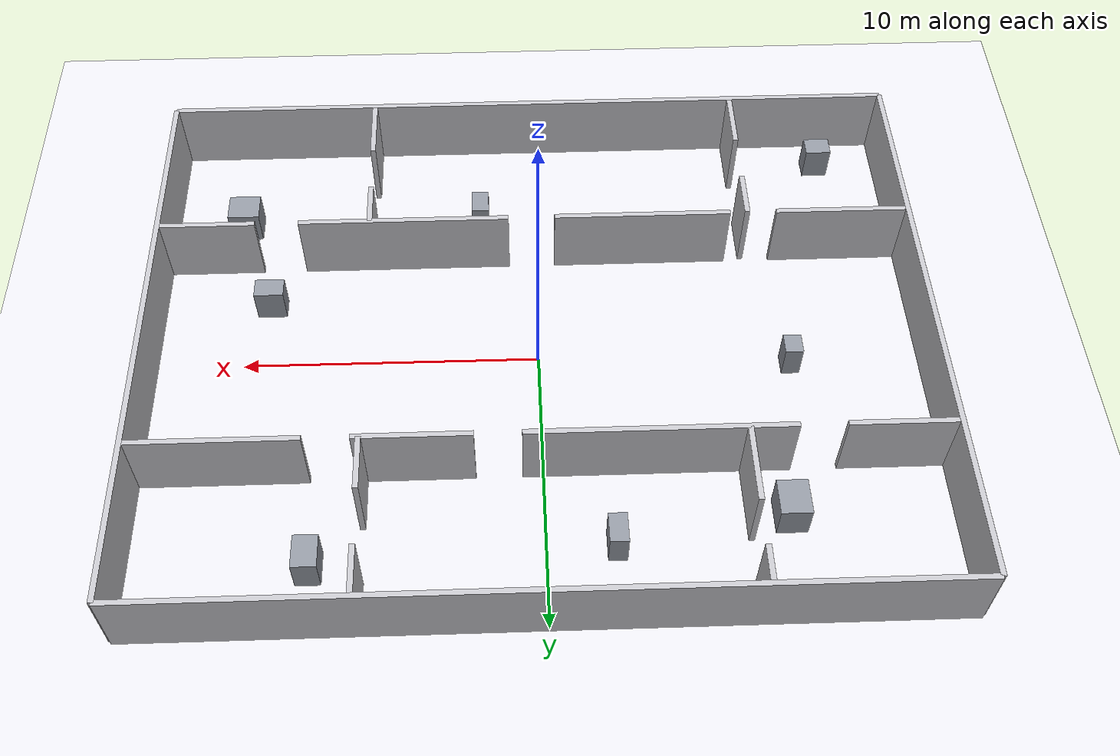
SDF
<?xml version="1.0"?>
<sdf version="1.9"><world name="new_room_world">
<plugin filename="gz-sim-physics-system" name="gz::sim::systems::Physics"/><plugin filename="gz-sim-user-commands-system" name="gz::sim::systems::UserCommands"/><plugin filename="gz-sim-scene-broadcaster-system" name="gz::sim::systems::SceneBroadcaster"/><plugin filename="gz-sim-sensors-system" name="gz::sim::systems::Sensors"><render_engine>ogre2</render_engine></plugin><plugin filename="gz-sim-imu-system" name="gz::sim::systems::Imu"/>
<physics name="new_room_realtime" type="ignored"><max_step_size>0.001</max_step_size><real_time_factor>1</real_time_factor></physics><gravity>0 0 -9.8</gravity><scene><ambient>0.85 0.85 0.87 1</ambient><background>0.68 0.68 0.71 1</background><shadows>false</shadows></scene><light name="sun" type="directional"><cast_shadows>false</cast_shadows><pose>0 0 10 0 0 0</pose><diffuse>0.95 0.95 0.95 1</diffuse><direction>-0.3 0.2 -1</direction></light>
<model name="new_room_ground"><static>true</static><link name="ground_link"><collision name="ground_collision"><geometry><plane><normal>0 0 1</normal><size>40 32</size></plane></geometry></collision><visual name="ground_visual"><geometry><plane><normal>0 0 1</normal><size>40 32</size></plane></geometry><material><ambient>0.92 0.92 0.94 1</ambient><diffuse>0.92 0.92 0.94 1</diffuse></material></visual></link></model>
<model name="mini_hospital_structure"><static>true</static><link name="structure">
<collision name="mx048_c000"><pose>0 10 1.25 0 0 0</pose><geometry><box><size>26 0.18 2.5</size></box></geometry></collision><visual name="mx048_v000"><pose>0 10 1.25 0 0 0</pose><geometry><box><size>26 0.18 2.5</size></box></geometry><material><ambient>0.78 0.78 0.80 1</ambient><diffuse>0.78 0.78 0.80 1</diffuse></material></visual>
<collision name="mx048_c001"><pose>0 -10 1.25 0 0 0</pose><geometry><box><size>26 0.18 2.5</size></box></geometry></collision><visual name="mx048_v001"><pose>0 -10 1.25 0 0 0</pose><geometry><box><size>26 0.18 2.5</size></box></geometry><material><ambient>0.78 0.78 0.80 1</ambient><diffuse>0.78 0.78 0.80 1</diffuse></material></visual>
<collision name="mx048_c002"><pose>-13 0 1.25 0 0 0</pose><geometry><box><size>0.18 20 2.5</size></box></geometry></collision><visual name="mx048_v002"><pose>-13 0 1.25 0 0 0</pose><geometry><box><size>0.18 20 2.5</size></box></geometry><material><ambient>0.78 0.78 0.80 1</ambient><diffuse>0.78 0.78 0.80 1</diffuse></material></visual>
<collision name="mx048_c003"><pose>13 0 1.25 0 0 0</pose><geometry><box><size>0.18 20 2.5</size></box></geometry></collision><visual name="mx048_v003"><pose>13 0 1.25 0 0 0</pose><geometry><box><size>0.18 20 2.5</size></box></geometry><material><ambient>0.78 0.78 0.80 1</ambient><diffuse>0.78 0.78 0.80 1</diffuse></material></visual>
<collision name="mx048_c004"><pose>-11.18 4.6 1.25 0 0 0</pose><geometry><box><size>3.46 0.18 2.5</size></box></geometry></collision><visual name="mx048_v004"><pose>-11.18 4.6 1.25 0 0 0</pose><geometry><box><size>3.46 0.18 2.5</size></box></geometry><material><ambient>0.78 0.78 0.80 1</ambient><diffuse>0.78 0.78 0.80 1</diffuse></material></visual>
<collision name="mx048_c005"><pose>-3.65 4.6 1.25 0 0 0</pose><geometry><box><size>8.6 0.18 2.5</size></box></geometry></collision><visual name="mx048_v005"><pose>-3.65 4.6 1.25 0 0 0</pose><geometry><box><size>8.6 0.18 2.5</size></box></geometry><material><ambient>0.78 0.78 0.80 1</ambient><diffuse>0.78 0.78 0.80 1</diffuse></material></visual>
<collision name="mx048_c006"><pose>4.05 4.6 1.25 0 0 0</pose><geometry><box><size>3.8 0.18 2.5</size></box></geometry></collision><visual name="mx048_v006"><pose>4.05 4.6 1.25 0 0 0</pose><geometry><box><size>3.8 0.18 2.5</size></box></geometry><material><ambient>0.78 0.78 0.80 1</ambient><diffuse>0.78 0.78 0.80 1</diffuse></material></visual>
<collision name="mx048_c007"><pose>10.18 4.6 1.25 0 0 0</pose><geometry><box><size>5.46 0.18 2.5</size></box></geometry></collision><visual name="mx048_v007"><pose>10.18 4.6 1.25 0 0 0</pose><geometry><box><size>5.46 0.18 2.5</size></box></geometry><material><ambient>0.78 0.78 0.80 1</ambient><diffuse>0.78 0.78 0.80 1</diffuse></material></visual>
<collision name="mx048_c008"><pose>-10.655 -4.3 1.25 0 0 0</pose><geometry><box><size>4.51 0.18 2.5</size></box></geometry></collision><visual name="mx048_v008"><pose>-10.655 -4.3 1.25 0 0 0</pose><geometry><box><size>4.51 0.18 2.5</size></box></geometry><material><ambient>0.78 0.78 0.80 1</ambient><diffuse>0.78 0.78 0.80 1</diffuse></material></visual>
<collision name="mx048_c009"><pose>-3.75 -4.3 1.25 0 0 0</pose><geometry><box><size>6.1 0.18 2.5</size></box></geometry></collision><visual name="mx048_v009"><pose>-3.75 -4.3 1.25 0 0 0</pose><geometry><box><size>6.1 0.18 2.5</size></box></geometry><material><ambient>0.78 0.78 0.80 1</ambient><diffuse>0.78 0.78 0.80 1</diffuse></material></visual>
<collision name="mx048_c010"><pose>4.525 -4.3 1.25 0 0 0</pose><geometry><box><size>7.25 0.18 2.5</size></box></geometry></collision><visual name="mx048_v010"><pose>4.525 -4.3 1.25 0 0 0</pose><geometry><box><size>7.25 0.18 2.5</size></box></geometry><material><ambient>0.78 0.78 0.80 1</ambient><diffuse>0.78 0.78 0.80 1</diffuse></material></visual>
<collision name="mx048_c011"><pose>11.28 -4.3 1.25 0 0 0</pose><geometry><box><size>3.26 0.18 2.5</size></box></geometry></collision><visual name="mx048_v011"><pose>11.28 -4.3 1.25 0 0 0</pose><geometry><box><size>3.26 0.18 2.5</size></box></geometry><material><ambient>0.78 0.78 0.80 1</ambient><diffuse>0.78 0.78 0.80 1</diffuse></material></visual>
<collision name="mx048_c012"><pose>-6.4 5.925 1.25 0 0 0</pose><geometry><box><size>0.18 2.65 2.5</size></box></geometry></collision><visual name="mx048_v012"><pose>-6.4 5.925 1.25 0 0 0</pose><geometry><box><size>0.18 2.65 2.5</size></box></geometry><material><ambient>0.78 0.78 0.80 1</ambient><diffuse>0.78 0.78 0.80 1</diffuse></material></visual>
<collision name="mx048_c013"><pose>-6.4 9.33 1.25 0 0 0</pose><geometry><box><size>0.18 1.16 2.5</size></box></geometry></collision><visual name="mx048_v013"><pose>-6.4 9.33 1.25 0 0 0</pose><geometry><box><size>0.18 1.16 2.5</size></box></geometry><material><ambient>0.78 0.78 0.80 1</ambient><diffuse>0.78 0.78 0.80 1</diffuse></material></visual>
<collision name="mx048_c014"><pose>5.7 5.525 1.25 0 0 0</pose><geometry><box><size>0.18 1.85 2.5</size></box></geometry></collision><visual name="mx048_v014"><pose>5.7 5.525 1.25 0 0 0</pose><geometry><box><size>0.18 1.85 2.5</size></box></geometry><material><ambient>0.78 0.78 0.80 1</ambient><diffuse>0.78 0.78 0.80 1</diffuse></material></visual>
<collision name="mx048_c015"><pose>5.7 9.13 1.25 0 0 0</pose><geometry><box><size>0.18 1.56 2.5</size></box></geometry></collision><visual name="mx048_v015"><pose>5.7 9.13 1.25 0 0 0</pose><geometry><box><size>0.18 1.56 2.5</size></box></geometry><material><ambient>0.78 0.78 0.80 1</ambient><diffuse>0.78 0.78 0.80 1</diffuse></material></visual>
<collision name="mx048_c016"><pose>-7.4 -8.855 1.25 0 0 0</pose><geometry><box><size>0.18 2.11 2.5</size></box></geometry></collision><visual name="mx048_v016"><pose>-7.4 -8.855 1.25 0 0 0</pose><geometry><box><size>0.18 2.11 2.5</size></box></geometry><material><ambient>0.78 0.78 0.80 1</ambient><diffuse>0.78 0.78 0.80 1</diffuse></material></visual>
<collision name="mx048_c017"><pose>-7.4 -5.15 1.25 0 0 0</pose><geometry><box><size>0.18 1.7 2.5</size></box></geometry></collision><visual name="mx048_v017"><pose>-7.4 -5.15 1.25 0 0 0</pose><geometry><box><size>0.18 1.7 2.5</size></box></geometry><material><ambient>0.78 0.78 0.80 1</ambient><diffuse>0.78 0.78 0.80 1</diffuse></material></visual>
<collision name="mx048_c018"><pose>5.7 -8.805 1.25 0 0 0</pose><geometry><box><size>0.18 2.21 2.5</size></box></geometry></collision><visual name="mx048_v018"><pose>5.7 -8.805 1.25 0 0 0</pose><geometry><box><size>0.18 2.21 2.5</size></box></geometry><material><ambient>0.78 0.78 0.80 1</ambient><diffuse>0.78 0.78 0.80 1</diffuse></material></visual>
<collision name="mx048_c019"><pose>5.7 -5.1 1.25 0 0 0</pose><geometry><box><size>0.18 1.6 2.5</size></box></geometry></collision><visual name="mx048_v019"><pose>5.7 -5.1 1.25 0 0 0</pose><geometry><box><size>0.18 1.6 2.5</size></box></geometry><material><ambient>0.78 0.78 0.80 1</ambient><diffuse>0.78 0.78 0.80 1</diffuse></material></visual>
<collision name="mx048_c020"><pose>-7.7 6.4 0.6 0 0 0</pose><geometry><box><size>1 1.2 1.2</size></box></geometry></collision><visual name="mx048_v020"><pose>-7.7 6.4 0.6 0 0 0</pose><geometry><box><size>1 1.2 1.2</size></box></geometry><material><ambient>0.58 0.60 0.64 1</ambient><diffuse>0.58 0.60 0.64 1</diffuse></material></visual>
<collision name="mx048_c021"><pose>-2.2 7.3 0.6 0 0 0</pose><geometry><box><size>0.6 1 1.2</size></box></geometry></collision><visual name="mx048_v021"><pose>-2.2 7.3 0.6 0 0 0</pose><geometry><box><size>0.6 1 1.2</size></box></geometry><material><ambient>0.58 0.60 0.64 1</ambient><diffuse>0.58 0.60 0.64 1</diffuse></material></visual>
<collision name="mx048_c022"><pose>7.3 7.8 0.6 0 0 0</pose><geometry><box><size>0.8 1.1 1.2</size></box></geometry></collision><visual name="mx048_v022"><pose>7.3 7.8 0.6 0 0 0</pose><geometry><box><size>0.8 1.1 1.2</size></box></geometry><material><ambient>0.58 0.60 0.64 1</ambient><diffuse>0.58 0.60 0.64 1</diffuse></material></visual>
<collision name="mx048_c023"><pose>-10.7 -8.7 0.6 0 0 0</pose><geometry><box><size>0.9 0.7 1.2</size></box></geometry></collision><visual name="mx048_v023"><pose>-10.7 -8.7 0.6 0 0 0</pose><geometry><box><size>0.9 0.7 1.2</size></box></geometry><material><ambient>0.58 0.60 0.64 1</ambient><diffuse>0.58 0.60 0.64 1</diffuse></material></visual>
<collision name="mx048_c024"><pose>1.9 -6.3 0.6 0 0 0</pose><geometry><box><size>0.6 0.9 1.2</size></box></geometry></collision><visual name="mx048_v024"><pose>1.9 -6.3 0.6 0 0 0</pose><geometry><box><size>0.6 0.9 1.2</size></box></geometry><material><ambient>0.58 0.60 0.64 1</ambient><diffuse>0.58 0.60 0.64 1</diffuse></material></visual>
<collision name="mx048_c025"><pose>10.4 -6.3 0.6 0 0 0</pose><geometry><box><size>1.1 1 1.2</size></box></geometry></collision><visual name="mx048_v025"><pose>10.4 -6.3 0.6 0 0 0</pose><geometry><box><size>1.1 1 1.2</size></box></geometry><material><ambient>0.58 0.60 0.64 1</ambient><diffuse>0.58 0.60 0.64 1</diffuse></material></visual>
<collision name="mx048_c026"><pose>-8.5 0.5 0.6 0 0 0</pose><geometry><box><size>0.6 0.7 1.2</size></box></geometry></collision><visual name="mx048_v026"><pose>-8.5 0.5 0.6 0 0 0</pose><geometry><box><size>0.6 0.7 1.2</size></box></geometry><material><ambient>0.58 0.60 0.64 1</ambient><diffuse>0.58 0.60 0.64 1</diffuse></material></visual>
<collision name="mx048_c027"><pose>9.2 -2.5 0.6 0 0 0</pose><geometry><box><size>1 0.7 1.2</size></box></geometry></collision><visual name="mx048_v027"><pose>9.2 -2.5 0.6 0 0 0</pose><geometry><box><size>1 0.7 1.2</size></box></geometry><material><ambient>0.58 0.60 0.64 1</ambient><diffuse>0.58 0.60 0.64 1</diffuse></material></visual>
</link></model></world></sdf>
